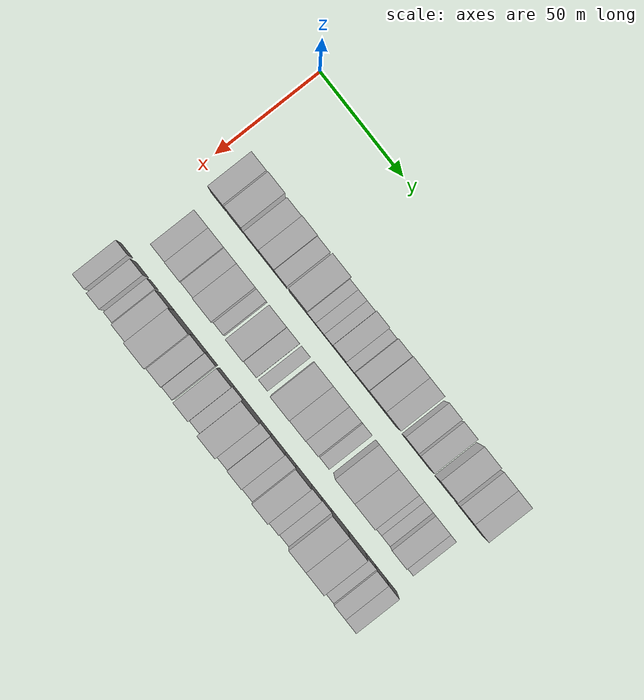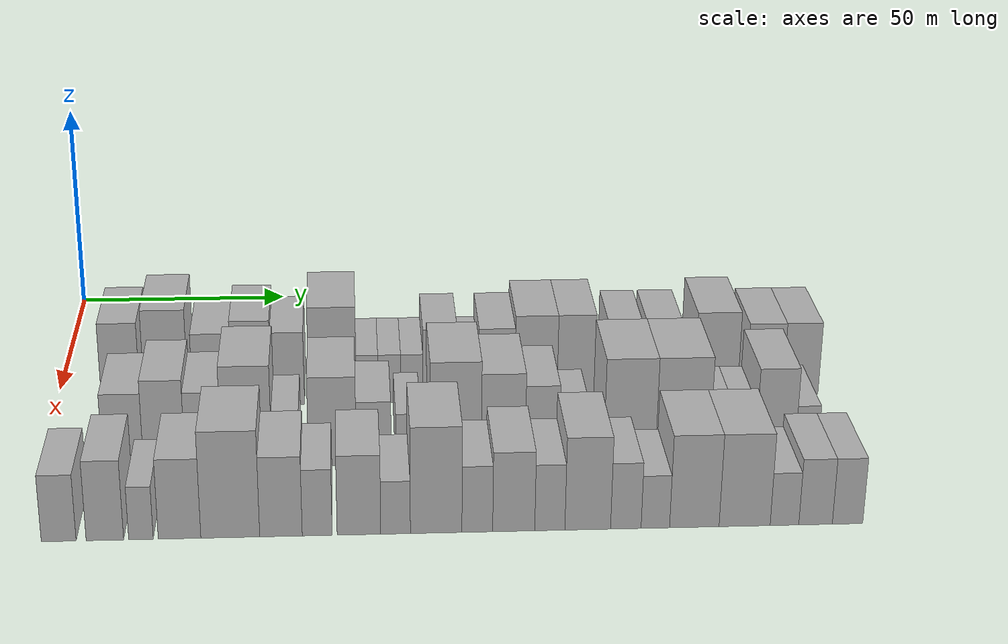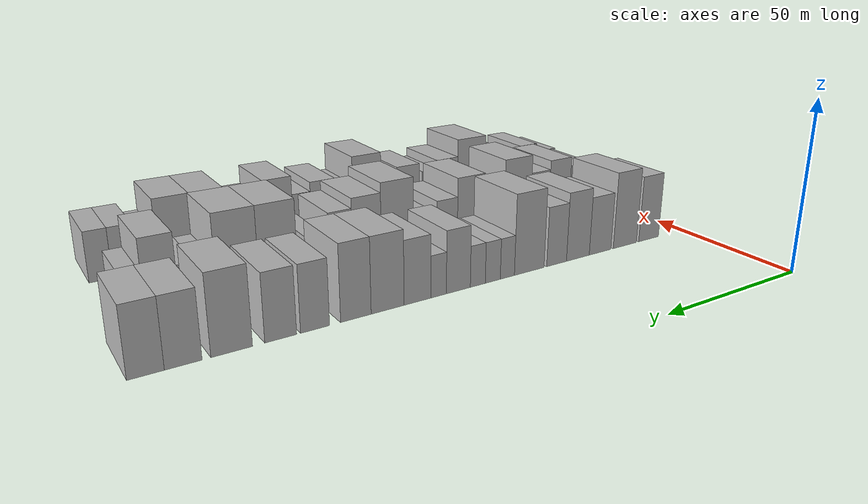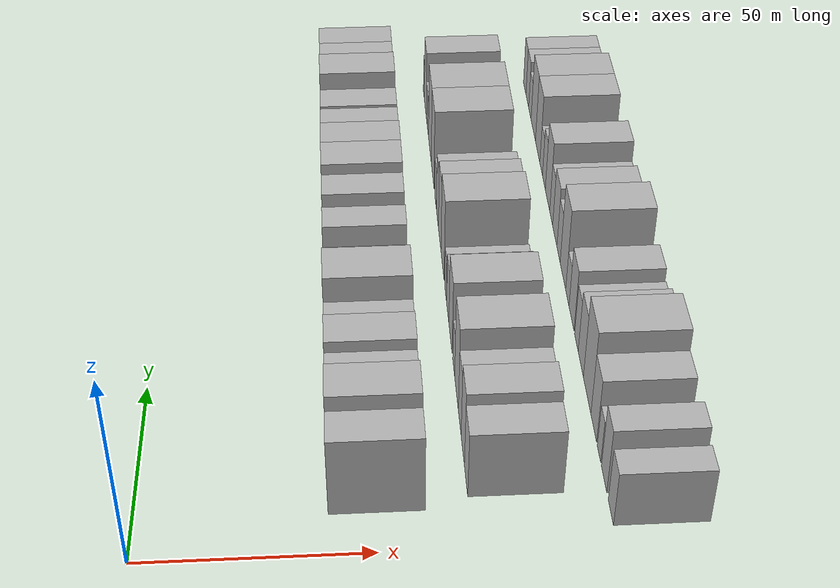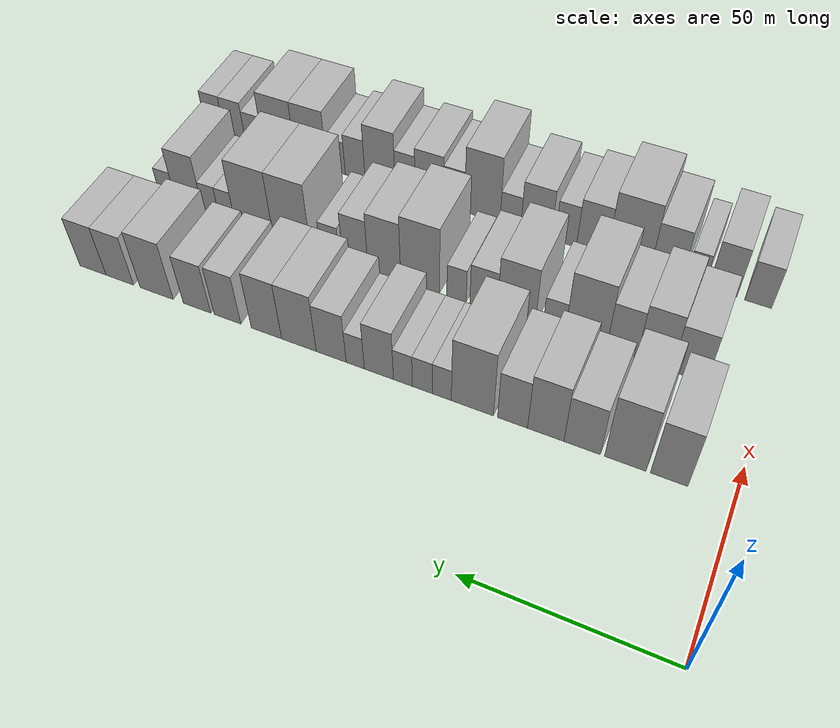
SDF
<sdf version="1.6">
 <world name="default">
  <model name="building_40">
   <static>1</static>
   <pose>50.0000 14.9023 0 0.000000 0.000000 0.000000</pose>
   <link name="link">
    <pose>0 0 10.50 0 0 0</pose>
    <collision name="collision"><geometry><box><size>20.0000 8.6773 21.0000</size></box></geometry></collision>
    <visual name="visual">
     <cast_shadows>0</cast_shadows>
     <geometry><box><size>20.0000 8.6773 21.0000</size></box></geometry>
     <material>
      <script>
       <uri>model://HANNAS_wall/materials/scripts</uri>
       <uri>model://HANNAS_wall/materials/textures</uri>
       <name>vrc/HANNAS_wall</name>
      </script>
     </material>
    </visual>
   </link>
  </model>
  <model name="building_41">
   <static>1</static>
   <pose>50.0000 25.1388 0 0.000000 0.000000 0.000000</pose>
   <link name="link">
    <pose>0 0 12.00 0 0 0</pose>
    <collision name="collision"><geometry><box><size>20.0000 9.7957 24.0000</size></box></geometry></collision>
    <visual name="visual">
     <cast_shadows>0</cast_shadows>
     <geometry><box><size>20.0000 9.7957 24.0000</size></box></geometry>
     <material>
      <script>
       <uri>model://HANNAS_wall/materials/scripts</uri>
       <uri>model://HANNAS_wall/materials/textures</uri>
       <name>vrc/HANNAS_wall</name>
      </script>
     </material>
    </visual>
   </link>
  </model>
  <model name="building_42">
   <static>1</static>
   <pose>50.0000 35.4241 0 0.000000 0.000000 0.000000</pose>
   <link name="link">
    <pose>0 0 9.00 0 0 0</pose>
    <collision name="collision"><geometry><box><size>20.0000 8.7750 18.0000</size></box></geometry></collision>
    <visual name="visual">
     <cast_shadows>0</cast_shadows>
     <geometry><box><size>20.0000 8.7750 18.0000</size></box></geometry>
     <material>
      <script>
       <uri>model://HANNAS_wall/materials/scripts</uri>
       <uri>model://HANNAS_wall/materials/textures</uri>
       <name>vrc/HANNAS_wall</name>
      </script>
     </material>
    </visual>
   </link>
  </model>
  <model name="building_43">
   <static>1</static>
   <pose>50.0000 44.2724 0 0.000000 0.000000 0.000000</pose>
   <link name="link">
    <pose>0 0 10.50 0 0 0</pose>
    <collision name="collision"><geometry><box><size>20.0000 8.9216 21.0000</size></box></geometry></collision>
    <visual name="visual">
     <cast_shadows>0</cast_shadows>
     <geometry><box><size>20.0000 8.9216 21.0000</size></box></geometry>
     <material>
      <script>
       <uri>model://HANNAS_wall/materials/scripts</uri>
       <uri>model://HANNAS_wall/materials/textures</uri>
       <name>vrc/HANNAS_wall</name>
      </script>
     </material>
    </visual>
   </link>
  </model>
  <model name="building_44">
   <static>1</static>
   <pose>50.0000 52.4769 0 0.000000 0.000000 0.000000</pose>
   <link name="link">
    <pose>0 0 9.00 0 0 0</pose>
    <collision name="collision"><geometry><box><size>20.0000 7.4874 18.0000</size></box></geometry></collision>
    <visual name="visual">
     <cast_shadows>0</cast_shadows>
     <geometry><box><size>20.0000 7.4874 18.0000</size></box></geometry>
     <material>
      <script>
       <uri>model://HANNAS_wall/materials/scripts</uri>
       <uri>model://HANNAS_wall/materials/textures</uri>
       <name>vrc/HANNAS_wall</name>
      </script>
     </material>
    </visual>
   </link>
  </model>
  <model name="building_45">
   <static>1</static>
   <pose>50.0000 62.5872 0 0.000000 0.000000 0.000000</pose>
   <link name="link">
    <pose>0 0 12.00 0 0 0</pose>
    <collision name="collision"><geometry><box><size>20.0000 10.7333 24.0000</size></box></geometry></collision>
    <visual name="visual">
     <cast_shadows>0</cast_shadows>
     <geometry><box><size>20.0000 10.7333 24.0000</size></box></geometry>
     <material>
      <script>
       <uri>model://HANNAS_wall/materials/scripts</uri>
       <uri>model://HANNAS_wall/materials/textures</uri>
       <name>vrc/HANNAS_wall</name>
      </script>
     </material>
    </visual>
   </link>
  </model>
  <model name="building_46">
   <static>1</static>
   <pose>50.0000 70.4261 0 0.000000 0.000000 0.000000</pose>
   <link name="link">
    <pose>0 0 6.00 0 0 0</pose>
    <collision name="collision"><geometry><box><size>20.0000 4.9445 12.0000</size></box></geometry></collision>
    <visual name="visual">
     <cast_shadows>0</cast_shadows>
     <geometry><box><size>20.0000 4.9445 12.0000</size></box></geometry>
     <material>
      <script>
       <uri>model://HANNAS_wall/materials/scripts</uri>
       <uri>model://HANNAS_wall/materials/textures</uri>
       <name>vrc/HANNAS_wall</name>
      </script>
     </material>
    </visual>
   </link>
  </model>
  <model name="building_47">
   <static>1</static>
   <pose>50.0000 75.4689 0 0.000000 0.000000 0.000000</pose>
   <link name="link">
    <pose>0 0 6.00 0 0 0</pose>
    <collision name="collision"><geometry><box><size>20.0000 5.1412 12.0000</size></box></geometry></collision>
    <visual name="visual">
     <cast_shadows>0</cast_shadows>
     <geometry><box><size>20.0000 5.1412 12.0000</size></box></geometry>
     <material>
      <script>
       <uri>model://HANNAS_wall/materials/scripts</uri>
       <uri>model://HANNAS_wall/materials/textures</uri>
       <name>vrc/HANNAS_wall</name>
      </script>
     </material>
    </visual>
   </link>
  </model>
  <model name="building_48">
   <static>1</static>
   <pose>50.0000 80.5435 0 0.000000 0.000000 0.000000</pose>
   <link name="link">
    <pose>0 0 6.00 0 0 0</pose>
    <collision name="collision"><geometry><box><size>20.0000 5.0081 12.0000</size></box></geometry></collision>
    <visual name="visual">
     <cast_shadows>0</cast_shadows>
     <geometry><box><size>20.0000 5.0081 12.0000</size></box></geometry>
     <material>
      <script>
       <uri>model://HANNAS_wall/materials/scripts</uri>
       <uri>model://HANNAS_wall/materials/textures</uri>
       <name>vrc/HANNAS_wall</name>
      </script>
     </material>
    </visual>
   </link>
  </model>
  <model name="building_49">
   <static>1</static>
   <pose>50.0000 86.9352 0 0.000000 0.000000 0.000000</pose>
   <link name="link">
    <pose>0 0 9.00 0 0 0</pose>
    <collision name="collision"><geometry><box><size>20.0000 7.7752 18.0000</size></box></geometry></collision>
    <visual name="visual">
     <cast_shadows>0</cast_shadows>
     <geometry><box><size>20.0000 7.7752 18.0000</size></box></geometry>
     <material>
      <script>
       <uri>model://HANNAS_wall/materials/scripts</uri>
       <uri>model://HANNAS_wall/materials/textures</uri>
       <name>vrc/HANNAS_wall</name>
      </script>
     </material>
    </visual>
   </link>
  </model>
  <model name="building_50">
   <static>1</static>
   <pose>50.0000 93.2761 0 0.000000 0.000000 0.000000</pose>
   <link name="link">
    <pose>0 0 6.00 0 0 0</pose>
    <collision name="collision"><geometry><box><size>20.0000 4.9065 12.0000</size></box></geometry></collision>
    <visual name="visual">
     <cast_shadows>0</cast_shadows>
     <geometry><box><size>20.0000 4.9065 12.0000</size></box></geometry>
     <material>
      <script>
       <uri>model://HANNAS_wall/materials/scripts</uri>
       <uri>model://HANNAS_wall/materials/textures</uri>
       <name>vrc/HANNAS_wall</name>
      </script>
     </material>
    </visual>
   </link>
  </model>
  <model name="building_51">
   <static>1</static>
   <pose>50.0000 99.8222 0 0.000000 0.000000 0.000000</pose>
   <link name="link">
    <pose>0 0 9.00 0 0 0</pose>
    <collision name="collision"><geometry><box><size>20.0000 8.1858 18.0000</size></box></geometry></collision>
    <visual name="visual">
     <cast_shadows>0</cast_shadows>
     <geometry><box><size>20.0000 8.1858 18.0000</size></box></geometry>
     <material>
      <script>
       <uri>model://HANNAS_wall/materials/scripts</uri>
       <uri>model://HANNAS_wall/materials/textures</uri>
       <name>vrc/HANNAS_wall</name>
      </script>
     </material>
    </visual>
   </link>
  </model>
  <model name="building_52">
   <static>1</static>
   <pose>50.0000 108.7448 0 0.000000 0.000000 0.000000</pose>
   <link name="link">
    <pose>0 0 10.50 0 0 0</pose>
    <collision name="collision"><geometry><box><size>20.0000 9.6593 21.0000</size></box></geometry></collision>
    <visual name="visual">
     <cast_shadows>0</cast_shadows>
     <geometry><box><size>20.0000 9.6593 21.0000</size></box></geometry>
     <material>
      <script>
       <uri>model://HANNAS_wall/materials/scripts</uri>
       <uri>model://HANNAS_wall/materials/textures</uri>
       <name>vrc/HANNAS_wall</name>
      </script>
     </material>
    </visual>
   </link>
  </model>
  <model name="building_53">
   <static>1</static>
   <pose>50.0000 117.8718 0 0.000000 0.000000 0.000000</pose>
   <link name="link">
    <pose>0 0 10.50 0 0 0</pose>
    <collision name="collision"><geometry><box><size>20.0000 8.5948 21.0000</size></box></geometry></collision>
    <visual name="visual">
     <cast_shadows>0</cast_shadows>
     <geometry><box><size>20.0000 8.5948 21.0000</size></box></geometry>
     <material>
      <script>
       <uri>model://HANNAS_wall/materials/scripts</uri>
       <uri>model://HANNAS_wall/materials/textures</uri>
       <name>vrc/HANNAS_wall</name>
      </script>
     </material>
    </visual>
   </link>
  </model>
  <model name="building_54">
   <static>1</static>
   <pose>50.0000 129.0244 0 0.000000 0.000000 0.000000</pose>
   <link name="link">
    <pose>0 0 9.00 0 0 0</pose>
    <collision name="collision"><geometry><box><size>20.0000 7.7103 18.0000</size></box></geometry></collision>
    <visual name="visual">
     <cast_shadows>0</cast_shadows>
     <geometry><box><size>20.0000 7.7103 18.0000</size></box></geometry>
     <material>
      <script>
       <uri>model://HANNAS_wall/materials/scripts</uri>
       <uri>model://HANNAS_wall/materials/textures</uri>
       <name>vrc/HANNAS_wall</name>
      </script>
     </material>
    </visual>
   </link>
  </model>
  <model name="building_55">
   <static>1</static>
   <pose>50.0000 137.9267 0 0.000000 0.000000 0.000000</pose>
   <link name="link">
    <pose>0 0 9.00 0 0 0</pose>
    <collision name="collision"><geometry><box><size>20.0000 8.0942 18.0000</size></box></geometry></collision>
    <visual name="visual">
     <cast_shadows>0</cast_shadows>
     <geometry><box><size>20.0000 8.0942 18.0000</size></box></geometry>
     <material>
      <script>
       <uri>model://HANNAS_wall/materials/scripts</uri>
       <uri>model://HANNAS_wall/materials/textures</uri>
       <name>vrc/HANNAS_wall</name>
      </script>
     </material>
    </visual>
   </link>
  </model>
  <model name="building_56">
   <static>1</static>
   <pose>50.0000 149.9469 0 0.000000 0.000000 0.000000</pose>
   <link name="link">
    <pose>0 0 10.50 0 0 0</pose>
    <collision name="collision"><geometry><box><size>20.0000 9.9464 21.0000</size></box></geometry></collision>
    <visual name="visual">
     <cast_shadows>0</cast_shadows>
     <geometry><box><size>20.0000 9.9464 21.0000</size></box></geometry>
     <material>
      <script>
       <uri>model://HANNAS_wall/materials/scripts</uri>
       <uri>model://HANNAS_wall/materials/textures</uri>
       <name>vrc/HANNAS_wall</name>
      </script>
     </material>
    </visual>
   </link>
  </model>
  <model name="building_57">
   <static>1</static>
   <pose>50.0000 161.1456 0 0.000000 0.000000 0.000000</pose>
   <link name="link">
    <pose>0 0 9.00 0 0 0</pose>
    <collision name="collision"><geometry><box><size>20.0000 8.4509 18.0000</size></box></geometry></collision>
    <visual name="visual">
     <cast_shadows>0</cast_shadows>
     <geometry><box><size>20.0000 8.4509 18.0000</size></box></geometry>
     <material>
      <script>
       <uri>model://HANNAS_wall/materials/scripts</uri>
       <uri>model://HANNAS_wall/materials/textures</uri>
       <name>vrc/HANNAS_wall</name>
      </script>
     </material>
    </visual>
   </link>
  </model>
  <model name="building_58">
   <static>1</static>
   <pose>50.0000 169.4315 0 0.000000 0.000000 0.000000</pose>
   <link name="link">
    <pose>0 0 9.00 0 0 0</pose>
    <collision name="collision"><geometry><box><size>20.0000 8.1209 18.0000</size></box></geometry></collision>
    <visual name="visual">
     <cast_shadows>0</cast_shadows>
     <geometry><box><size>20.0000 8.1209 18.0000</size></box></geometry>
     <material>
      <script>
       <uri>model://HANNAS_wall/materials/scripts</uri>
       <uri>model://HANNAS_wall/materials/textures</uri>
       <name>vrc/HANNAS_wall</name>
      </script>
     </material>
    </visual>
   </link>
  </model>
  <model name="building_116">
   <static>1</static>
   <pose>79.0000 18.0920 0 0.000000 0.000000 0.000000</pose>
   <link name="link">
    <pose>0 0 9.00 0 0 0</pose>
    <collision name="collision"><geometry><box><size>20.0000 8.6061 18.0000</size></box></geometry></collision>
    <visual name="visual">
     <cast_shadows>0</cast_shadows>
     <geometry><box><size>20.0000 8.6061 18.0000</size></box></geometry>
     <material>
      <script>
       <uri>model://HANNAS_wall/materials/scripts</uri>
       <uri>model://HANNAS_wall/materials/textures</uri>
       <name>vrc/HANNAS_wall</name>
      </script>
     </material>
    </visual>
   </link>
  </model>
  <model name="building_117">
   <static>1</static>
   <pose>79.0000 26.8082 0 0.000000 0.000000 0.000000</pose>
   <link name="link">
    <pose>0 0 10.50 0 0 0</pose>
    <collision name="collision"><geometry><box><size>20.0000 8.8263 21.0000</size></box></geometry></collision>
    <visual name="visual">
     <cast_shadows>0</cast_shadows>
     <geometry><box><size>20.0000 8.8263 21.0000</size></box></geometry>
     <material>
      <script>
       <uri>model://HANNAS_wall/materials/scripts</uri>
       <uri>model://HANNAS_wall/materials/textures</uri>
       <name>vrc/HANNAS_wall</name>
      </script>
     </material>
    </visual>
   </link>
  </model>
  <model name="building_118">
   <static>1</static>
   <pose>79.0000 35.0823 0 0.000000 0.000000 0.000000</pose>
   <link name="link">
    <pose>0 0 9.00 0 0 0</pose>
    <collision name="collision"><geometry><box><size>20.0000 7.7219 18.0000</size></box></geometry></collision>
    <visual name="visual">
     <cast_shadows>0</cast_shadows>
     <geometry><box><size>20.0000 7.7219 18.0000</size></box></geometry>
     <material>
      <script>
       <uri>model://HANNAS_wall/materials/scripts</uri>
       <uri>model://HANNAS_wall/materials/textures</uri>
       <name>vrc/HANNAS_wall</name>
      </script>
     </material>
    </visual>
   </link>
  </model>
  <model name="building_119">
   <static>1</static>
   <pose>79.0000 44.3139 0 0.000000 0.000000 0.000000</pose>
   <link name="link">
    <pose>0 0 12.00 0 0 0</pose>
    <collision name="collision"><geometry><box><size>20.0000 10.7412 24.0000</size></box></geometry></collision>
    <visual name="visual">
     <cast_shadows>0</cast_shadows>
     <geometry><box><size>20.0000 10.7412 24.0000</size></box></geometry>
     <material>
      <script>
       <uri>model://HANNAS_wall/materials/scripts</uri>
       <uri>model://HANNAS_wall/materials/textures</uri>
       <name>vrc/HANNAS_wall</name>
      </script>
     </material>
    </visual>
   </link>
  </model>
  <model name="building_120">
   <static>1</static>
   <pose>79.0000 52.5910 0 0.000000 0.000000 0.000000</pose>
   <link name="link">
    <pose>0 0 6.00 0 0 0</pose>
    <collision name="collision"><geometry><box><size>20.0000 5.8131 12.0000</size></box></geometry></collision>
    <visual name="visual">
     <cast_shadows>0</cast_shadows>
     <geometry><box><size>20.0000 5.8131 12.0000</size></box></geometry>
     <material>
      <script>
       <uri>model://HANNAS_wall/materials/scripts</uri>
       <uri>model://HANNAS_wall/materials/textures</uri>
       <name>vrc/HANNAS_wall</name>
      </script>
     </material>
    </visual>
   </link>
  </model>
  <model name="building_121">
   <static>1</static>
   <pose>79.0000 62.5888 0 0.000000 0.000000 0.000000</pose>
   <link name="link">
    <pose>0 0 10.50 0 0 0</pose>
    <collision name="collision"><geometry><box><size>20.0000 10.1825 21.0000</size></box></geometry></collision>
    <visual name="visual">
     <cast_shadows>0</cast_shadows>
     <geometry><box><size>20.0000 10.1825 21.0000</size></box></geometry>
     <material>
      <script>
       <uri>model://HANNAS_wall/materials/scripts</uri>
       <uri>model://HANNAS_wall/materials/textures</uri>
       <name>vrc/HANNAS_wall</name>
      </script>
     </material>
    </visual>
   </link>
  </model>
  <model name="building_122">
   <static>1</static>
   <pose>79.0000 71.4157 0 0.000000 0.000000 0.000000</pose>
   <link name="link">
    <pose>0 0 7.50 0 0 0</pose>
    <collision name="collision"><geometry><box><size>20.0000 7.4713 15.0000</size></box></geometry></collision>
    <visual name="visual">
     <cast_shadows>0</cast_shadows>
     <geometry><box><size>20.0000 7.4713 15.0000</size></box></geometry>
     <material>
      <script>
       <uri>model://HANNAS_wall/materials/scripts</uri>
       <uri>model://HANNAS_wall/materials/textures</uri>
       <name>vrc/HANNAS_wall</name>
      </script>
     </material>
    </visual>
   </link>
  </model>
  <model name="building_123">
   <static>1</static>
   <pose>79.0000 78.8280 0 0.000000 0.000000 0.000000</pose>
   <link name="link">
    <pose>0 0 6.00 0 0 0</pose>
    <collision name="collision"><geometry><box><size>20.0000 5.3533 12.0000</size></box></geometry></collision>
    <visual name="visual">
     <cast_shadows>0</cast_shadows>
     <geometry><box><size>20.0000 5.3533 12.0000</size></box></geometry>
     <material>
      <script>
       <uri>model://HANNAS_wall/materials/scripts</uri>
       <uri>model://HANNAS_wall/materials/textures</uri>
       <name>vrc/HANNAS_wall</name>
      </script>
     </material>
    </visual>
   </link>
  </model>
  <model name="building_124">
   <static>1</static>
   <pose>79.0000 88.9756 0 0.000000 0.000000 0.000000</pose>
   <link name="link">
    <pose>0 0 12.00 0 0 0</pose>
    <collision name="collision"><geometry><box><size>20.0000 10.9420 24.0000</size></box></geometry></collision>
    <visual name="visual">
     <cast_shadows>0</cast_shadows>
     <geometry><box><size>20.0000 10.9420 24.0000</size></box></geometry>
     <material>
      <script>
       <uri>model://HANNAS_wall/materials/scripts</uri>
       <uri>model://HANNAS_wall/materials/textures</uri>
       <name>vrc/HANNAS_wall</name>
      </script>
     </material>
    </visual>
   </link>
  </model>
  <model name="building_125">
   <static>1</static>
   <pose>79.0000 99.1601 0 0.000000 0.000000 0.000000</pose>
   <link name="link">
    <pose>0 0 10.50 0 0 0</pose>
    <collision name="collision"><geometry><box><size>20.0000 9.4269 21.0000</size></box></geometry></collision>
    <visual name="visual">
     <cast_shadows>0</cast_shadows>
     <geometry><box><size>20.0000 9.4269 21.0000</size></box></geometry>
     <material>
      <script>
       <uri>model://HANNAS_wall/materials/scripts</uri>
       <uri>model://HANNAS_wall/materials/textures</uri>
       <name>vrc/HANNAS_wall</name>
      </script>
     </material>
    </visual>
   </link>
  </model>
  <model name="building_126">
   <static>1</static>
   <pose>79.0000 107.5275 0 0.000000 0.000000 0.000000</pose>
   <link name="link">
    <pose>0 0 9.00 0 0 0</pose>
    <collision name="collision"><geometry><box><size>20.0000 7.3079 18.0000</size></box></geometry></collision>
    <visual name="visual">
     <cast_shadows>0</cast_shadows>
     <geometry><box><size>20.0000 7.3079 18.0000</size></box></geometry>
     <material>
      <script>
       <uri>model://HANNAS_wall/materials/scripts</uri>
       <uri>model://HANNAS_wall/materials/textures</uri>
       <name>vrc/HANNAS_wall</name>
      </script>
     </material>
    </visual>
   </link>
  </model>
  <model name="building_127">
   <static>1</static>
   <pose>79.0000 114.9873 0 0.000000 0.000000 0.000000</pose>
   <link name="link">
    <pose>0 0 6.00 0 0 0</pose>
    <collision name="collision"><geometry><box><size>20.0000 5.6117 12.0000</size></box></geometry></collision>
    <visual name="visual">
     <cast_shadows>0</cast_shadows>
     <geometry><box><size>20.0000 5.6117 12.0000</size></box></geometry>
     <material>
      <script>
       <uri>model://HANNAS_wall/materials/scripts</uri>
       <uri>model://HANNAS_wall/materials/textures</uri>
       <name>vrc/HANNAS_wall</name>
      </script>
     </material>
    </visual>
   </link>
  </model>
  <model name="building_128">
   <static>1</static>
   <pose>79.0000 126.3923 0 0.000000 0.000000 0.000000</pose>
   <link name="link">
    <pose>0 0 12.00 0 0 0</pose>
    <collision name="collision"><geometry><box><size>20.0000 11.1982 24.0000</size></box></geometry></collision>
    <visual name="visual">
     <cast_shadows>0</cast_shadows>
     <geometry><box><size>20.0000 11.1982 24.0000</size></box></geometry>
     <material>
      <script>
       <uri>model://HANNAS_wall/materials/scripts</uri>
       <uri>model://HANNAS_wall/materials/textures</uri>
       <name>vrc/HANNAS_wall</name>
      </script>
     </material>
    </visual>
   </link>
  </model>
  <model name="building_129">
   <static>1</static>
   <pose>79.0000 137.8387 0 0.000000 0.000000 0.000000</pose>
   <link name="link">
    <pose>0 0 12.00 0 0 0</pose>
    <collision name="collision"><geometry><box><size>20.0000 11.6948 24.0000</size></box></geometry></collision>
    <visual name="visual">
     <cast_shadows>0</cast_shadows>
     <geometry><box><size>20.0000 11.6948 24.0000</size></box></geometry>
     <material>
      <script>
       <uri>model://HANNAS_wall/materials/scripts</uri>
       <uri>model://HANNAS_wall/materials/textures</uri>
       <name>vrc/HANNAS_wall</name>
      </script>
     </material>
    </visual>
   </link>
  </model>
  <model name="building_130">
   <static>1</static>
   <pose>79.0000 146.1227 0 0.000000 0.000000 0.000000</pose>
   <link name="link">
    <pose>0 0 6.00 0 0 0</pose>
    <collision name="collision"><geometry><box><size>20.0000 4.8731 12.0000</size></box></geometry></collision>
    <visual name="visual">
     <cast_shadows>0</cast_shadows>
     <geometry><box><size>20.0000 4.8731 12.0000</size></box></geometry>
     <material>
      <script>
       <uri>model://HANNAS_wall/materials/scripts</uri>
       <uri>model://HANNAS_wall/materials/textures</uri>
       <name>vrc/HANNAS_wall</name>
      </script>
     </material>
    </visual>
   </link>
  </model>
  <model name="building_131">
   <static>1</static>
   <pose>79.0000 151.0796 0 0.000000 0.000000 0.000000</pose>
   <link name="link">
    <pose>0 0 6.00 0 0 0</pose>
    <collision name="collision"><geometry><box><size>20.0000 5.0407 12.0000</size></box></geometry></collision>
    <visual name="visual">
     <cast_shadows>0</cast_shadows>
     <geometry><box><size>20.0000 5.0407 12.0000</size></box></geometry>
     <material>
      <script>
       <uri>model://HANNAS_wall/materials/scripts</uri>
       <uri>model://HANNAS_wall/materials/textures</uri>
       <name>vrc/HANNAS_wall</name>
      </script>
     </material>
    </visual>
   </link>
  </model>
  <model name="building_132">
   <static>1</static>
   <pose>79.0000 157.9130 0 0.000000 0.000000 0.000000</pose>
   <link name="link">
    <pose>0 0 10.50 0 0 0</pose>
    <collision name="collision"><geometry><box><size>20.0000 8.6260 21.0000</size></box></geometry></collision>
    <visual name="visual">
     <cast_shadows>0</cast_shadows>
     <geometry><box><size>20.0000 8.6260 21.0000</size></box></geometry>
     <material>
      <script>
       <uri>model://HANNAS_wall/materials/scripts</uri>
       <uri>model://HANNAS_wall/materials/textures</uri>
       <name>vrc/HANNAS_wall</name>
      </script>
     </material>
    </visual>
   </link>
  </model>
  <model name="building_133">
   <static>1</static>
   <pose>79.0000 164.7333 0 0.000000 0.000000 0.000000</pose>
   <link name="link">
    <pose>0 0 6.00 0 0 0</pose>
    <collision name="collision"><geometry><box><size>20.0000 5.0146 12.0000</size></box></geometry></collision>
    <visual name="visual">
     <cast_shadows>0</cast_shadows>
     <geometry><box><size>20.0000 5.0146 12.0000</size></box></geometry>
     <material>
      <script>
       <uri>model://HANNAS_wall/materials/scripts</uri>
       <uri>model://HANNAS_wall/materials/textures</uri>
       <name>vrc/HANNAS_wall</name>
      </script>
     </material>
    </visual>
   </link>
  </model>
  <model name="building_192">
   <static>1</static>
   <pose>108.0000 7.8800 0 0.000000 0.000000 0.000000</pose>
   <link name="link">
    <pose>0 0 7.50 0 0 0</pose>
    <collision name="collision"><geometry><box><size>20.0000 6.9326 15.0000</size></box></geometry></collision>
    <visual name="visual">
     <cast_shadows>0</cast_shadows>
     <geometry><box><size>20.0000 6.9326 15.0000</size></box></geometry>
     <material>
      <script>
       <uri>model://HANNAS_wall/materials/scripts</uri>
       <uri>model://HANNAS_wall/materials/textures</uri>
       <name>vrc/HANNAS_wall</name>
      </script>
     </material>
    </visual>
   </link>
  </model>
  <model name="building_193">
   <static>1</static>
   <pose>108.0000 17.0810 0 0.000000 0.000000 0.000000</pose>
   <link name="link">
    <pose>0 0 9.00 0 0 0</pose>
    <collision name="collision"><geometry><box><size>20.0000 7.4694 18.0000</size></box></geometry></collision>
    <visual name="visual">
     <cast_shadows>0</cast_shadows>
     <geometry><box><size>20.0000 7.4694 18.0000</size></box></geometry>
     <material>
      <script>
       <uri>model://HANNAS_wall/materials/scripts</uri>
       <uri>model://HANNAS_wall/materials/textures</uri>
       <name>vrc/HANNAS_wall</name>
      </script>
     </material>
    </visual>
   </link>
  </model>
  <model name="building_194">
   <static>1</static>
   <pose>108.0000 24.2661 0 0.000000 0.000000 0.000000</pose>
   <link name="link">
    <pose>0 0 6.00 0 0 0</pose>
    <collision name="collision"><geometry><box><size>20.0000 4.9009 12.0000</size></box></geometry></collision>
    <visual name="visual">
     <cast_shadows>0</cast_shadows>
     <geometry><box><size>20.0000 4.9009 12.0000</size></box></geometry>
     <material>
      <script>
       <uri>model://HANNAS_wall/materials/scripts</uri>
       <uri>model://HANNAS_wall/materials/textures</uri>
       <name>vrc/HANNAS_wall</name>
      </script>
     </material>
    </visual>
   </link>
  </model>
  <model name="building_195">
   <static>1</static>
   <pose>108.0000 31.9699 0 0.000000 0.000000 0.000000</pose>
   <link name="link">
    <pose>0 0 9.00 0 0 0</pose>
    <collision name="collision"><geometry><box><size>20.0000 8.5065 18.0000</size></box></geometry></collision>
    <visual name="visual">
     <cast_shadows>0</cast_shadows>
     <geometry><box><size>20.0000 8.5065 18.0000</size></box></geometry>
     <material>
      <script>
       <uri>model://HANNAS_wall/materials/scripts</uri>
       <uri>model://HANNAS_wall/materials/textures</uri>
       <name>vrc/HANNAS_wall</name>
      </script>
     </material>
    </visual>
   </link>
  </model>
  <model name="building_196">
   <static>1</static>
   <pose>108.0000 42.1172 0 0.000000 0.000000 0.000000</pose>
   <link name="link">
    <pose>0 0 12.00 0 0 0</pose>
    <collision name="collision"><geometry><box><size>20.0000 11.7881 24.0000</size></box></geometry></collision>
    <visual name="visual">
     <cast_shadows>0</cast_shadows>
     <geometry><box><size>20.0000 11.7881 24.0000</size></box></geometry>
     <material>
      <script>
       <uri>model://HANNAS_wall/materials/scripts</uri>
       <uri>model://HANNAS_wall/materials/textures</uri>
       <name>vrc/HANNAS_wall</name>
      </script>
     </material>
    </visual>
   </link>
  </model>
  <model name="building_197">
   <static>1</static>
   <pose>108.0000 52.2772 0 0.000000 0.000000 0.000000</pose>
   <link name="link">
    <pose>0 0 9.00 0 0 0</pose>
    <collision name="collision"><geometry><box><size>20.0000 8.5319 18.0000</size></box></geometry></collision>
    <visual name="visual">
     <cast_shadows>0</cast_shadows>
     <geometry><box><size>20.0000 8.5319 18.0000</size></box></geometry>
     <material>
      <script>
       <uri>model://HANNAS_wall/materials/scripts</uri>
       <uri>model://HANNAS_wall/materials/textures</uri>
       <name>vrc/HANNAS_wall</name>
      </script>
     </material>
    </visual>
   </link>
  </model>
  <model name="building_198">
   <static>1</static>
   <pose>108.0000 59.5473 0 0.000000 0.000000 0.000000</pose>
   <link name="link">
    <pose>0 0 7.50 0 0 0</pose>
    <collision name="collision"><geometry><box><size>20.0000 6.0082 15.0000</size></box></geometry></collision>
    <visual name="visual">
     <cast_shadows>0</cast_shadows>
     <geometry><box><size>20.0000 6.0082 15.0000</size></box></geometry>
     <material>
      <script>
       <uri>model://HANNAS_wall/materials/scripts</uri>
       <uri>model://HANNAS_wall/materials/textures</uri>
       <name>vrc/HANNAS_wall</name>
      </script>
     </material>
    </visual>
   </link>
  </model>
  <model name="building_199">
   <static>1</static>
   <pose>108.0000 67.9329 0 0.000000 0.000000 0.000000</pose>
   <link name="link">
    <pose>0 0 9.00 0 0 0</pose>
    <collision name="collision"><geometry><box><size>20.0000 8.7631 18.0000</size></box></geometry></collision>
    <visual name="visual">
     <cast_shadows>0</cast_shadows>
     <geometry><box><size>20.0000 8.7631 18.0000</size></box></geometry>
     <material>
      <script>
       <uri>model://HANNAS_wall/materials/scripts</uri>
       <uri>model://HANNAS_wall/materials/textures</uri>
       <name>vrc/HANNAS_wall</name>
      </script>
     </material>
    </visual>
   </link>
  </model>
  <model name="building_200">
   <static>1</static>
   <pose>108.0000 75.2986 0 0.000000 0.000000 0.000000</pose>
   <link name="link">
    <pose>0 0 6.00 0 0 0</pose>
    <collision name="collision"><geometry><box><size>20.0000 5.9683 12.0000</size></box></geometry></collision>
    <visual name="visual">
     <cast_shadows>0</cast_shadows>
     <geometry><box><size>20.0000 5.9683 12.0000</size></box></geometry>
     <material>
      <script>
       <uri>model://HANNAS_wall/materials/scripts</uri>
       <uri>model://HANNAS_wall/materials/textures</uri>
       <name>vrc/HANNAS_wall</name>
      </script>
     </material>
    </visual>
   </link>
  </model>
  <model name="building_201">
   <static>1</static>
   <pose>108.0000 83.4799 0 0.000000 0.000000 0.000000</pose>
   <link name="link">
    <pose>0 0 12.00 0 0 0</pose>
    <collision name="collision"><geometry><box><size>20.0000 10.3943 24.0000</size></box></geometry></collision>
    <visual name="visual">
     <cast_shadows>0</cast_shadows>
     <geometry><box><size>20.0000 10.3943 24.0000</size></box></geometry>
     <material>
      <script>
       <uri>model://HANNAS_wall/materials/scripts</uri>
       <uri>model://HANNAS_wall/materials/textures</uri>
       <name>vrc/HANNAS_wall</name>
      </script>
     </material>
    </visual>
   </link>
  </model>
  <model name="building_202">
   <static>1</static>
   <pose>108.0000 91.7847 0 0.000000 0.000000 0.000000</pose>
   <link name="link">
    <pose>0 0 7.50 0 0 0</pose>
    <collision name="collision"><geometry><box><size>20.0000 6.2153 15.0000</size></box></geometry></collision>
    <visual name="visual">
     <cast_shadows>0</cast_shadows>
     <geometry><box><size>20.0000 6.2153 15.0000</size></box></geometry>
     <material>
      <script>
       <uri>model://HANNAS_wall/materials/scripts</uri>
       <uri>model://HANNAS_wall/materials/textures</uri>
       <name>vrc/HANNAS_wall</name>
      </script>
     </material>
    </visual>
   </link>
  </model>
  <model name="building_203">
   <static>1</static>
   <pose>108.0000 99.1477 0 0.000000 0.000000 0.000000</pose>
   <link name="link">
    <pose>0 0 9.00 0 0 0</pose>
    <collision name="collision"><geometry><box><size>20.0000 8.5109 18.0000</size></box></geometry></collision>
    <visual name="visual">
     <cast_shadows>0</cast_shadows>
     <geometry><box><size>20.0000 8.5109 18.0000</size></box></geometry>
     <material>
      <script>
       <uri>model://HANNAS_wall/materials/scripts</uri>
       <uri>model://HANNAS_wall/materials/textures</uri>
       <name>vrc/HANNAS_wall</name>
      </script>
     </material>
    </visual>
   </link>
  </model>
  <model name="building_204">
   <static>1</static>
   <pose>108.0000 106.4543 0 0.000000 0.000000 0.000000</pose>
   <link name="link">
    <pose>0 0 7.50 0 0 0</pose>
    <collision name="collision"><geometry><box><size>20.0000 6.1023 15.0000</size></box></geometry></collision>
    <visual name="visual">
     <cast_shadows>0</cast_shadows>
     <geometry><box><size>20.0000 6.1023 15.0000</size></box></geometry>
     <material>
      <script>
       <uri>model://HANNAS_wall/materials/scripts</uri>
       <uri>model://HANNAS_wall/materials/textures</uri>
       <name>vrc/HANNAS_wall</name>
      </script>
     </material>
    </visual>
   </link>
  </model>
  <model name="building_205">
   <static>1</static>
   <pose>108.0000 114.1404 0 0.000000 0.000000 0.000000</pose>
   <link name="link">
    <pose>0 0 10.50 0 0 0</pose>
    <collision name="collision"><geometry><box><size>20.0000 9.2699 21.0000</size></box></geometry></collision>
    <visual name="visual">
     <cast_shadows>0</cast_shadows>
     <geometry><box><size>20.0000 9.2699 21.0000</size></box></geometry>
     <material>
      <script>
       <uri>model://HANNAS_wall/materials/scripts</uri>
       <uri>model://HANNAS_wall/materials/textures</uri>
       <name>vrc/HANNAS_wall</name>
      </script>
     </material>
    </visual>
   </link>
  </model>
  <model name="building_206">
   <static>1</static>
   <pose>108.0000 121.8773 0 0.000000 0.000000 0.000000</pose>
   <link name="link">
    <pose>0 0 7.50 0 0 0</pose>
    <collision name="collision"><geometry><box><size>20.0000 6.2038 15.0000</size></box></geometry></collision>
    <visual name="visual">
     <cast_shadows>0</cast_shadows>
     <geometry><box><size>20.0000 6.2038 15.0000</size></box></geometry>
     <material>
      <script>
       <uri>model://HANNAS_wall/materials/scripts</uri>
       <uri>model://HANNAS_wall/materials/textures</uri>
       <name>vrc/HANNAS_wall</name>
      </script>
     </material>
    </visual>
   </link>
  </model>
  <model name="building_207">
   <static>1</static>
   <pose>108.0000 127.8765 0 0.000000 0.000000 0.000000</pose>
   <link name="link">
    <pose>0 0 6.00 0 0 0</pose>
    <collision name="collision"><geometry><box><size>20.0000 5.7945 12.0000</size></box></geometry></collision>
    <visual name="visual">
     <cast_shadows>0</cast_shadows>
     <geometry><box><size>20.0000 5.7945 12.0000</size></box></geometry>
     <material>
      <script>
       <uri>model://HANNAS_wall/materials/scripts</uri>
       <uri>model://HANNAS_wall/materials/textures</uri>
       <name>vrc/HANNAS_wall</name>
      </script>
     </material>
    </visual>
   </link>
  </model>
  <model name="building_208">
   <static>1</static>
   <pose>108.0000 135.8157 0 0.000000 0.000000 0.000000</pose>
   <link name="link">
    <pose>0 0 10.50 0 0 0</pose>
    <collision name="collision"><geometry><box><size>20.0000 10.0839 21.0000</size></box></geometry></collision>
    <visual name="visual">
     <cast_shadows>0</cast_shadows>
     <geometry><box><size>20.0000 10.0839 21.0000</size></box></geometry>
     <material>
      <script>
       <uri>model://HANNAS_wall/materials/scripts</uri>
       <uri>model://HANNAS_wall/materials/textures</uri>
       <name>vrc/HANNAS_wall</name>
      </script>
     </material>
    </visual>
   </link>
  </model>
  <model name="building_209">
   <static>1</static>
   <pose>108.0000 146.0734 0 0.000000 0.000000 0.000000</pose>
   <link name="link">
    <pose>0 0 10.50 0 0 0</pose>
    <collision name="collision"><geometry><box><size>20.0000 10.4314 21.0000</size></box></geometry></collision>
    <visual name="visual">
     <cast_shadows>0</cast_shadows>
     <geometry><box><size>20.0000 10.4314 21.0000</size></box></geometry>
     <material>
      <script>
       <uri>model://HANNAS_wall/materials/scripts</uri>
       <uri>model://HANNAS_wall/materials/textures</uri>
       <name>vrc/HANNAS_wall</name>
      </script>
     </material>
    </visual>
   </link>
  </model>
  <model name="building_210">
   <static>1</static>
   <pose>108.0000 154.2182 0 0.000000 0.000000 0.000000</pose>
   <link name="link">
    <pose>0 0 6.00 0 0 0</pose>
    <collision name="collision"><geometry><box><size>20.0000 5.8583 12.0000</size></box></geometry></collision>
    <visual name="visual">
     <cast_shadows>0</cast_shadows>
     <geometry><box><size>20.0000 5.8583 12.0000</size></box></geometry>
     <material>
      <script>
       <uri>model://HANNAS_wall/materials/scripts</uri>
       <uri>model://HANNAS_wall/materials/textures</uri>
       <name>vrc/HANNAS_wall</name>
      </script>
     </material>
    </visual>
   </link>
  </model>
  <model name="building_211">
   <static>1</static>
   <pose>108.0000 160.5787 0 0.000000 0.000000 0.000000</pose>
   <link name="link">
    <pose>0 0 7.50 0 0 0</pose>
    <collision name="collision"><geometry><box><size>20.0000 6.8627 15.0000</size></box></geometry></collision>
    <visual name="visual">
     <cast_shadows>0</cast_shadows>
     <geometry><box><size>20.0000 6.8627 15.0000</size></box></geometry>
     <material>
      <script>
       <uri>model://HANNAS_wall/materials/scripts</uri>
       <uri>model://HANNAS_wall/materials/textures</uri>
       <name>vrc/HANNAS_wall</name>
      </script>
     </material>
    </visual>
   </link>
  </model>
  <model name="building_212">
   <static>1</static>
   <pose>108.0000 167.1278 0 0.000000 0.000000 0.000000</pose>
   <link name="link">
    <pose>0 0 7.50 0 0 0</pose>
    <collision name="collision"><geometry><box><size>20.0000 6.2354 15.0000</size></box></geometry></collision>
    <visual name="visual">
     <cast_shadows>0</cast_shadows>
     <geometry><box><size>20.0000 6.2354 15.0000</size></box></geometry>
     <material>
      <script>
       <uri>model://HANNAS_wall/materials/scripts</uri>
       <uri>model://HANNAS_wall/materials/textures</uri>
       <name>vrc/HANNAS_wall</name>
      </script>
     </material>
    </visual>
   </link>
  </model>
 </world>
</sdf>
